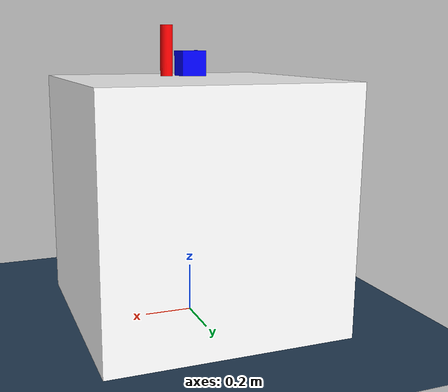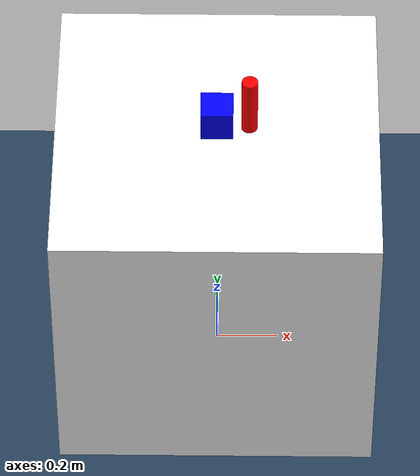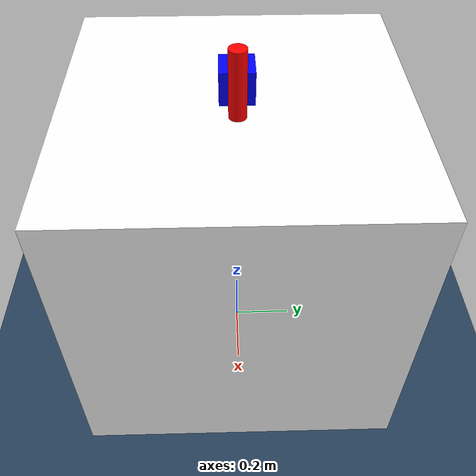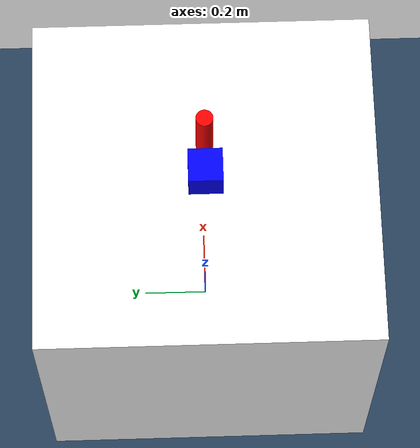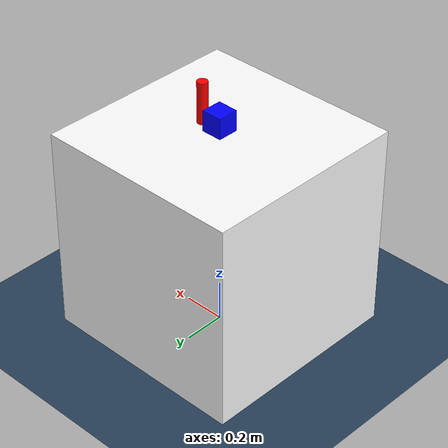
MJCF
<mujoco model="push_cube_env">
    <option timestep="0.002" />

    <visual>
        <headlight diffuse="0.6 0.6 0.6" ambient="0.3 0.3 0.3" specular="0 0 0"/>
        <rgba haze="0.15 0.25 0.35 1"/>
        <global fovy="45" azimuth="90" elevation="-90"/>
    </visual>

    <asset>
        <texture type="skybox" builtin="gradient" rgb1="0.3 0.5 0.7" rgb2="0 0 0" width="512" height="3072"/>
        <texture type="2d" name="groundplane" builtin="checker" mark="edge" rgb1="0.2 0.3 0.4" rgb2="0.1 0.2 0.3"
        markrgb="0.8 0.8 0.8" width="300" height="300"/>
        <material name="groundplane" texture="groundplane" texuniform="true" texrepeat="5 5" reflectance="0.2"/>
    </asset>

    <worldbody>
        <light pos="0 0 2" />
        <geom name="floor" size="0 0 0.05" type="plane" material="groundplane"/>

        <body name="table" pos="0 0 0">
            <geom type="box" pos="0 0 0.5" size="0.5 0.5 0.5" mass="10" rgba="1 1 1 1" />
        </body>
        <body name="push_cube" pos="0 0 1.01">
            <freejoint/>
            <geom type="box" pos="0 0 0.05" size="0.05 0.05 0.05" mass="1" rgba="0 0 1 1" />
        </body>

        <!-- pos_z 0.01 so that it do not hit with the table -->
        <body name="end_effector" pos="0.1 0 1.01">
            <joint name="x_slider" type="slide" axis="1 0 0" />
            <joint name="y_slider" type="slide" axis="0 1 0" />
            <geom type="cylinder" pos="0 0 0.1" size="0.025 0.1" mass="1" rgba="1 0 0 1" />
        </body>
    </worldbody>

    <!-- TODO(abhismirai42): update the gains if needed -->
    <actuator>
        <position name="x_slider_actu" joint="x_slider" kp="1000" kv="50" ctrlrange="-0.5 0.5" />
        <position name="y_slider_actu" joint="y_slider" kp="1000" kv="50" ctrlrange="-0.5 0.5" />
    </actuator>
</mujoco>
